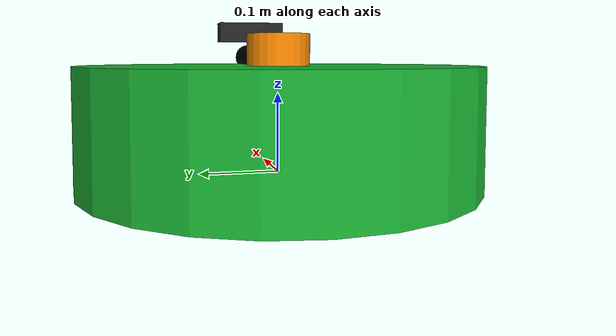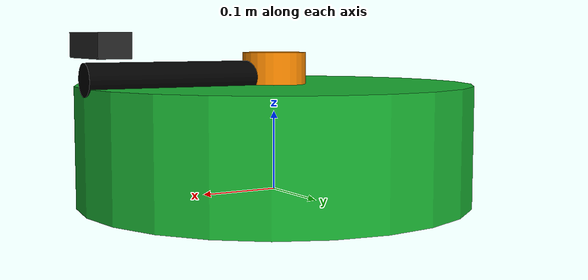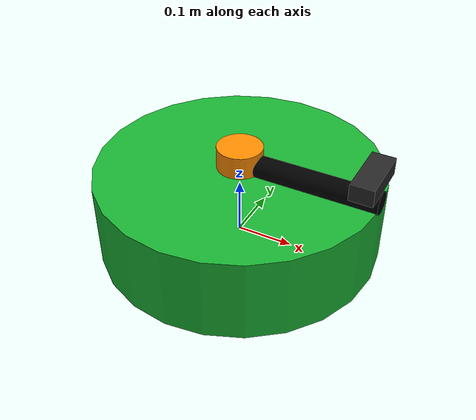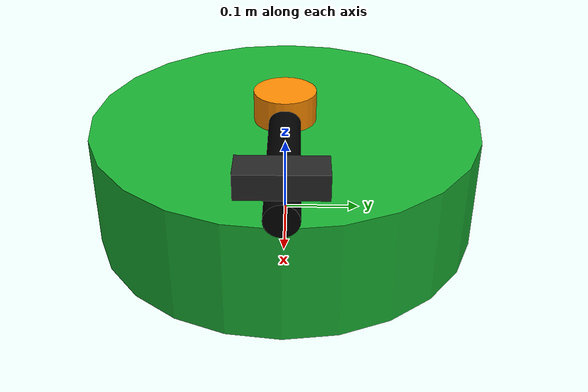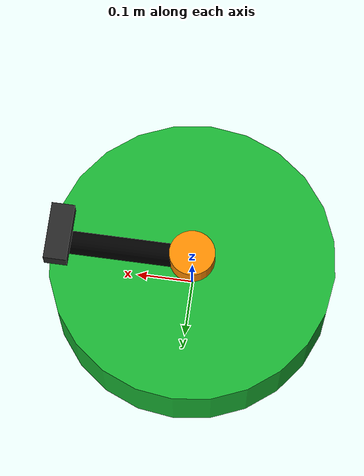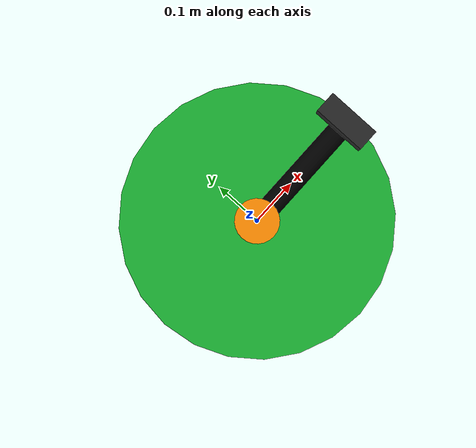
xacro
<?xml version="1.0"?>
<robot xmlns:xacro="http://www.ros.org/wiki/xacro" name="follower">

  <xacro:property name="body_radius" value="0.25"/>
  <xacro:property name="body_height" value="0.15"/>
  <xacro:property name="body_mass"   value="6.0"/>
  <xacro:property name="wheel_radius" value="0.06"/>
  <xacro:property name="wheel_width"  value="0.04"/>
  <xacro:property name="wheel_mass"   value="0.5"/>
  <xacro:property name="wheel_sep"    value="0.40"/>
  <xacro:property name="caster_radius" value="0.03"/>

  <xacro:macro name="cyl_inertia" params="m r h">
    <inertia ixx="${m*(3*r*r + h*h)/12.0}" ixy="0" ixz="0"
             iyy="${m*(3*r*r + h*h)/12.0}" iyz="0"
             izz="${m*r*r/2.0}"/>
  </xacro:macro>

  <xacro:macro name="sph_inertia" params="m r">
    <inertia ixx="${2*m*r*r/5.0}" ixy="0" ixz="0"
             iyy="${2*m*r*r/5.0}" iyz="0"
             izz="${2*m*r*r/5.0}"/>
  </xacro:macro>

  <link name="base_footprint"/>

  <joint name="base_footprint_to_link" type="fixed">
    <parent link="base_footprint"/>
    <child link="base_link"/>
    <origin xyz="0 0 ${wheel_radius}" rpy="0 0 0"/>
  </joint>

  <link name="base_link">
    <visual>
      <geometry><cylinder radius="${body_radius}" length="${body_height}"/></geometry>
      <material name="green"><color rgba="0.1 0.7 0.2 1"/></material>
    </visual>
    <collision>
      <geometry><cylinder radius="${body_radius}" length="${body_height}"/></geometry>
    </collision>
    <inertial>
      <mass value="${body_mass}"/>
      <xacro:cyl_inertia m="${body_mass}" r="${body_radius}" h="${body_height}"/>
    </inertial>
  </link>

  <!-- forward arrow so heading is visible in Gazebo / RViz -->
  <link name="heading_marker">
    <visual>
      <origin xyz="0 0 0" rpy="0 ${pi/2} 0"/>
      <geometry><cylinder radius="0.02" length="${body_radius}"/></geometry>
      <material name="black"><color rgba="0 0 0 1"/></material>
    </visual>
  </link>
  <joint name="base_to_heading" type="fixed">
    <parent link="base_link"/>
    <child link="heading_marker"/>
    <origin xyz="${body_radius/2} 0 ${body_height/2 + 0.01}" rpy="0 0 0"/>
  </joint>

  <xacro:macro name="wheel" params="prefix y_sign">
    <link name="${prefix}_wheel_link">
      <visual>
        <origin xyz="0 0 0" rpy="${pi/2} 0 0"/>
        <geometry><cylinder radius="${wheel_radius}" length="${wheel_width}"/></geometry>
        <material name="dark"><color rgba="0.1 0.1 0.1 1"/></material>
      </visual>
      <collision>
        <origin xyz="0 0 0" rpy="${pi/2} 0 0"/>
        <geometry><cylinder radius="${wheel_radius}" length="${wheel_width}"/></geometry>
      </collision>
      <inertial>
        <mass value="${wheel_mass}"/>
        <xacro:cyl_inertia m="${wheel_mass}" r="${wheel_radius}" h="${wheel_width}"/>
      </inertial>
    </link>
    <joint name="${prefix}_wheel_joint" type="continuous">
      <parent link="base_link"/>
      <child link="${prefix}_wheel_link"/>
      <origin xyz="0 ${y_sign*wheel_sep/2} 0" rpy="0 0 0"/>
      <axis xyz="0 1 0"/>
      <limit effort="20" velocity="${1.5/wheel_radius}"/>
      <dynamics damping="0.05" friction="0.05"/>
    </joint>
    <gazebo reference="${prefix}_wheel_link">
      <mu1>1.0</mu1>
      <mu2>1.0</mu2>
      <kp>1e7</kp>
      <kd>1.0</kd>
    </gazebo>
  </xacro:macro>

  <xacro:wheel prefix="left"  y_sign=" 1"/>
  <xacro:wheel prefix="right" y_sign="-1"/>

  <!-- low-friction caster spheres front and back so the body stays balanced -->
  <xacro:macro name="caster" params="prefix x_sign">
    <link name="${prefix}_caster_link">
      <visual>
        <geometry><sphere radius="${caster_radius}"/></geometry>
        <material name="grey"><color rgba="0.5 0.5 0.5 1"/></material>
      </visual>
      <collision>
        <geometry><sphere radius="${caster_radius}"/></geometry>
      </collision>
      <inertial>
        <mass value="0.05"/>
        <xacro:sph_inertia m="0.05" r="${caster_radius}"/>
      </inertial>
    </link>
    <joint name="${prefix}_caster_joint" type="fixed">
      <parent link="base_link"/>
      <child link="${prefix}_caster_link"/>
      <origin xyz="${x_sign*(body_radius - caster_radius)} 0 ${-(wheel_radius - caster_radius)}" rpy="0 0 0"/>
    </joint>
    <gazebo reference="${prefix}_caster_link">
      <mu1>0.0</mu1>
      <mu2>0.0</mu2>
      <kp>1e6</kp>
      <kd>1.0</kd>
    </gazebo>
  </xacro:macro>

  <xacro:caster prefix="front" x_sign=" 1"/>
  <xacro:caster prefix="back"  x_sign="-1"/>

  <link name="camera_link">
    <visual>
      <geometry><box size="0.04 0.10 0.03"/></geometry>
      <material name="charcoal"><color rgba="0.15 0.15 0.15 1"/></material>
    </visual>
    <inertial>
      <mass value="0.05"/>
      <inertia ixx="1e-5" ixy="0" ixz="0" iyy="1e-5" iyz="0" izz="1e-5"/>
    </inertial>
  </link>
  <joint name="base_to_camera" type="fixed">
    <parent link="base_link"/>
    <child link="camera_link"/>
    <origin xyz="${body_radius - 0.02} 0 ${body_height/2 + 0.05}" rpy="0 0 0"/>
  </joint>
  <link name="camera_optical_frame"/>
  <joint name="camera_to_optical" type="fixed">
    <parent link="camera_link"/>
    <child link="camera_optical_frame"/>
    <origin xyz="0 0 0" rpy="${-pi/2} 0 ${-pi/2}"/>
  </joint>
  <gazebo reference="camera_link">
    <sensor name="rgbd_camera" type="rgbd_camera">
      <topic>/follower/camera</topic>
      <update_rate>20</update_rate>
      <always_on>1</always_on>
      <visualize>false</visualize>
      <gz_frame_id>follower/camera_optical_frame</gz_frame_id>
      <camera>
        <horizontal_fov>1.5708</horizontal_fov>
        <image>
          <width>320</width>
          <height>240</height>
          <format>R8G8B8</format>
        </image>
        <clip>
          <near>0.1</near>
          <far>10.0</far>
        </clip>
        <distortion>
          <k1>0</k1><k2>0</k2><k3>0</k3><p1>0</p1><p2>0</p2>
        </distortion>
      </camera>
    </sensor>
  </gazebo>

  <!-- 2D LiDAR mount: matches sim/sensors.py LidarSensor (360°, 72 rays, 8 m). -->
  <link name="lidar_link">
    <visual>
      <geometry><cylinder radius="0.04" length="0.04"/></geometry>
      <material name="orange"><color rgba="1.0 0.55 0.0 1"/></material>
    </visual>
    <collision>
      <geometry><cylinder radius="0.04" length="0.04"/></geometry>
    </collision>
    <inertial>
      <mass value="0.05"/>
      <xacro:cyl_inertia m="0.05" r="0.04" h="0.04"/>
    </inertial>
  </link>
  <joint name="base_to_lidar" type="fixed">
    <parent link="base_link"/>
    <child link="lidar_link"/>
    <origin xyz="0 0 ${body_height/2 + 0.02}" rpy="0 0 0"/>
  </joint>
  <gazebo reference="lidar_link">
    <sensor name="lidar" type="gpu_lidar">
      <topic>/follower/scan</topic>
      <update_rate>20</update_rate>
      <always_on>1</always_on>
      <visualize>true</visualize>
      <gz_frame_id>follower/lidar_link</gz_frame_id>
      <lidar>
        <scan>
          <horizontal>
            <samples>72</samples>
            <resolution>1</resolution>
            <min_angle>-3.14159265</min_angle>
            <max_angle> 3.14159265</max_angle>
          </horizontal>
          <vertical>
            <samples>1</samples>
            <resolution>1</resolution>
            <min_angle>0</min_angle>
            <max_angle>0</max_angle>
          </vertical>
        </scan>
        <range>
          <min>0.12</min>
          <max>8.0</max>
          <resolution>0.01</resolution>
        </range>
      </lidar>
    </sensor>
  </gazebo>

  <gazebo>
    <plugin filename="ignition-gazebo-diff-drive-system"
            name="ignition::gazebo::systems::DiffDrive">
      <left_joint>left_wheel_joint</left_joint>
      <right_joint>right_wheel_joint</right_joint>
      <wheel_separation>${wheel_sep}</wheel_separation>
      <wheel_radius>${wheel_radius}</wheel_radius>
      <max_linear_acceleration>3.0</max_linear_acceleration>
      <max_linear_velocity>1.5</max_linear_velocity>
      <max_angular_velocity>1.5</max_angular_velocity>
      <topic>/follower/cmd_vel</topic>
      <odom_topic>/follower/odom</odom_topic>
      <tf_topic>/follower/tf</tf_topic>
      <frame_id>follower/odom</frame_id>
      <child_frame_id>base_footprint</child_frame_id>
      <odom_publish_frequency>50</odom_publish_frequency>
    </plugin>
    <plugin filename="ignition-gazebo-joint-state-publisher-system"
            name="ignition::gazebo::systems::JointStatePublisher">
      <topic>/follower/joint_states</topic>
    </plugin>
  </gazebo>

</robot>
